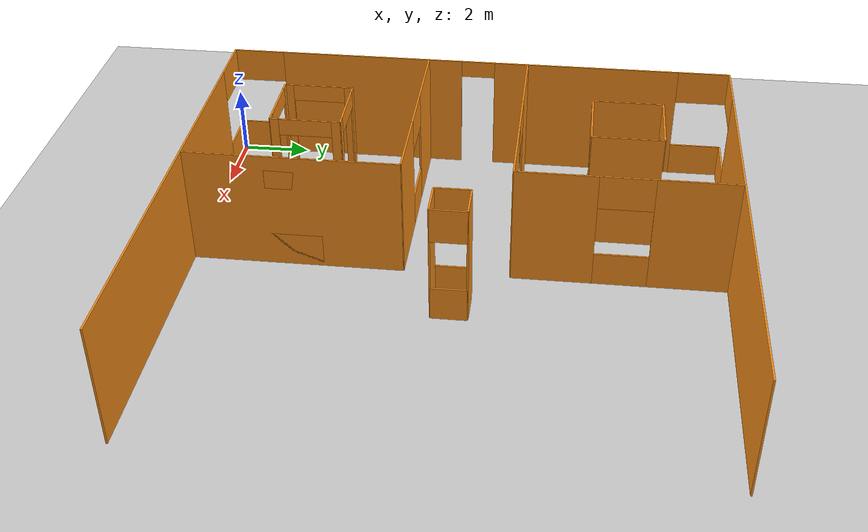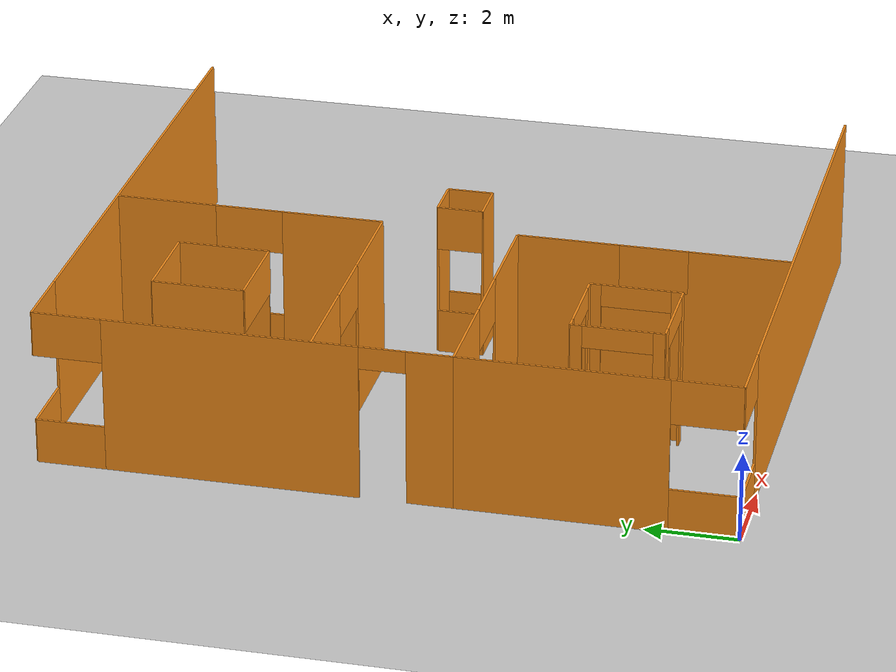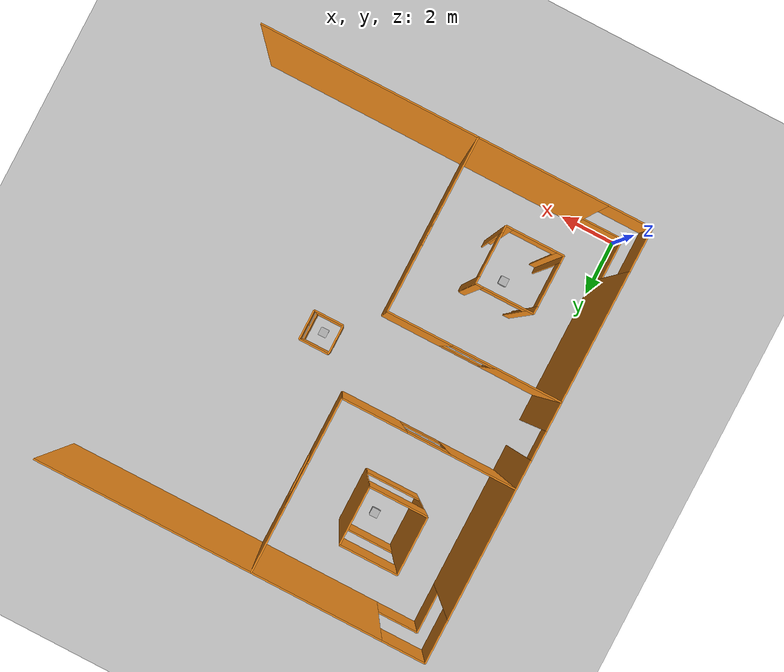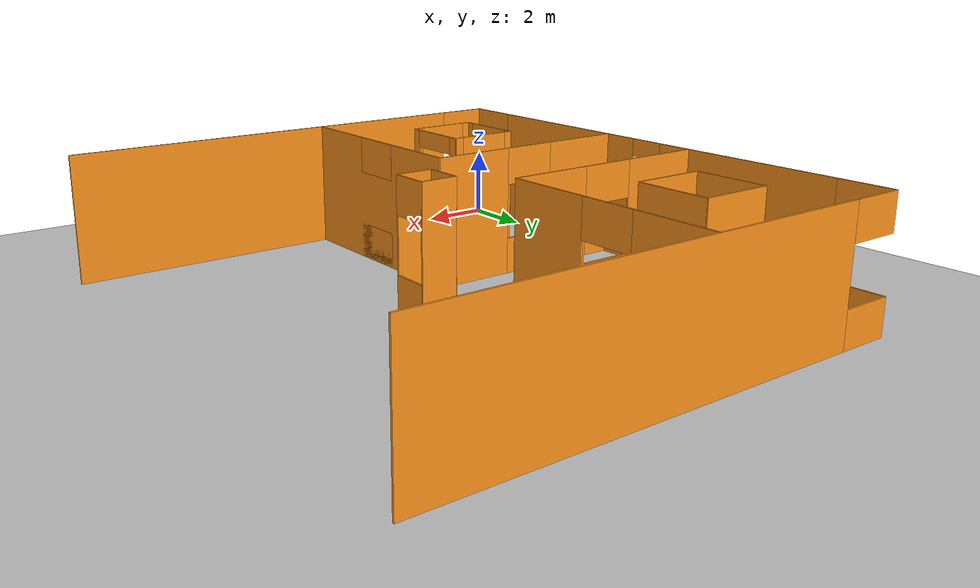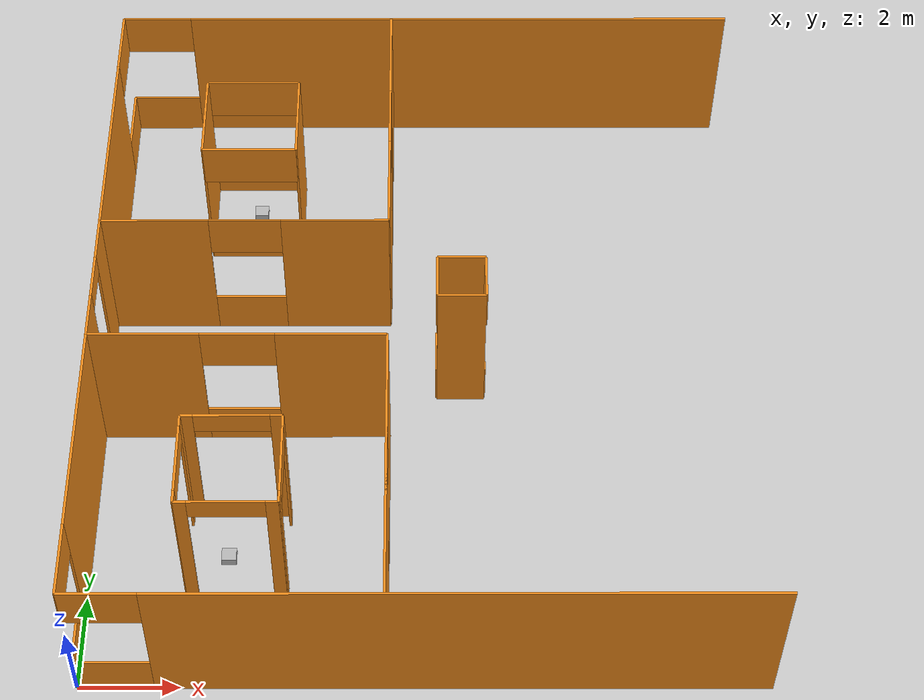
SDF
<sdf version="1.6">
 <world name="default">
  <include><uri>model://rirpc_box</uri><name>cube_3</name><pose>3.03125 12.21875 0 0 0 0</pose></include>
  <include><uri>model://rirpc_box</uri><name>cube_2</name><pose>2.78125 2.96875 0 0 0 0</pose></include>
  <include><uri>model://rirpc_box</uri><name>cube_0</name><pose>7.53125 7.46875 0 0 0 0</pose></include>
  <model name="window_20">
   <pose>3.0 13.0 1.75 0 0 -0.0</pose>
   <link name="top">
    <pose>0 0 1.25 0 0 0</pose>
    <inertial>
     <mass>1</mass>
     <inertia><ixx>0</ixx><ixy>0</ixy><ixz>0</ixz><iyy>0</iyy><iyz>0</iyz><izz>0</izz></inertia>
    </inertial>
    <collision name="collision"><geometry><box><size>2.0 0.05 1.0</size></box></geometry></collision>
    <visual name="visual">
     <geometry><box><size>2.0 0.05 1.0</size></box></geometry>
     <material>
      <script><name>Gazebo/Orange</name><uri>file://media/materials/scripts/gazebo.material</uri></script>
     </material>
    </visual>
   </link>
   <link name="bot">
    <pose>0 0 -1.25 0 0 0</pose>
    <inertial>
     <mass>1</mass>
     <inertia><ixx>0</ixx><ixy>0</ixy><ixz>0</ixz><iyy>0</iyy><iyz>0</iyz><izz>0</izz></inertia>
    </inertial>
    <collision name="collision"><geometry><box><size>2.0 0.05 1.0</size></box></geometry></collision>
    <visual name="visual">
     <geometry><box><size>2.0 0.05 1.0</size></box></geometry>
     <material>
      <script><name>Gazebo/Orange</name><uri>file://media/materials/scripts/gazebo.material</uri></script>
     </material>
    </visual>
   </link>
   <static>1</static>
  </model>
  <model name="window_19">
   <pose>3.0 11.0 1.75 0 0 -3.141592653589793</pose>
   <link name="top">
    <pose>0 0 1.25 0 0 0</pose>
    <inertial>
     <mass>1</mass>
     <inertia><ixx>0</ixx><ixy>0</ixy><ixz>0</ixz><iyy>0</iyy><iyz>0</iyz><izz>0</izz></inertia>
    </inertial>
    <collision name="collision"><geometry><box><size>2.0 0.05 1.0</size></box></geometry></collision>
    <visual name="visual">
     <geometry><box><size>2.0 0.05 1.0</size></box></geometry>
     <material>
      <script><name>Gazebo/Orange</name><uri>file://media/materials/scripts/gazebo.material</uri></script>
     </material>
    </visual>
   </link>
   <link name="bot">
    <pose>0 0 -1.25 0 0 0</pose>
    <inertial>
     <mass>1</mass>
     <inertia><ixx>0</ixx><ixy>0</ixy><ixz>0</ixz><iyy>0</iyy><iyz>0</iyz><izz>0</izz></inertia>
    </inertial>
    <collision name="collision"><geometry><box><size>2.0 0.05 1.0</size></box></geometry></collision>
    <visual name="visual">
     <geometry><box><size>2.0 0.05 1.0</size></box></geometry>
     <material>
      <script><name>Gazebo/Orange</name><uri>file://media/materials/scripts/gazebo.material</uri></script>
     </material>
    </visual>
   </link>
   <static>1</static>
  </model>
  <model name="window_15">
   <pose>6.0 3.0 1.75 0 0 -1.5707963267948966</pose>
   <link name="top">
    <pose>0 0 1.25 0 0 0</pose>
    <inertial>
     <mass>1</mass>
     <inertia><ixx>0</ixx><ixy>0</ixy><ixz>0</ixz><iyy>0</iyy><iyz>0</iyz><izz>0</izz></inertia>
    </inertial>
    <collision name="collision"><geometry><box><size>1.5 0.05 1.0</size></box></geometry></collision>
    <visual name="visual">
     <geometry><box><size>1.5 0.05 1.0</size></box></geometry>
     <material>
      <script><name>Gazebo/Orange</name><uri>file://media/materials/scripts/gazebo.material</uri></script>
     </material>
    </visual>
   </link>
   <link name="bot">
    <pose>0 0 -1.25 0 0 0</pose>
    <inertial>
     <mass>1</mass>
     <inertia><ixx>0</ixx><ixy>0</ixy><ixz>0</ixz><iyy>0</iyy><iyz>0</iyz><izz>0</izz></inertia>
    </inertial>
    <collision name="collision"><geometry><box><size>1.5 0.05 1.0</size></box></geometry></collision>
    <visual name="visual">
     <geometry><box><size>1.5 0.05 1.0</size></box></geometry>
     <material>
      <script><name>Gazebo/Orange</name><uri>file://media/materials/scripts/gazebo.material</uri></script>
     </material>
    </visual>
   </link>
   <static>1</static>
  </model>
  <model name="window_13">
   <pose>6.0 12.0 1.75 0 0 1.5707963267948966</pose>
   <link name="top">
    <pose>0 0 1.25 0 0 0</pose>
    <inertial>
     <mass>1</mass>
     <inertia><ixx>0</ixx><ixy>0</ixy><ixz>0</ixz><iyy>0</iyy><iyz>0</iyz><izz>0</izz></inertia>
    </inertial>
    <collision name="collision"><geometry><box><size>1.5 0.05 1.0</size></box></geometry></collision>
    <visual name="visual">
     <geometry><box><size>1.5 0.05 1.0</size></box></geometry>
     <material>
      <script><name>Gazebo/Orange</name><uri>file://media/materials/scripts/gazebo.material</uri></script>
     </material>
    </visual>
   </link>
   <link name="bot">
    <pose>0 0 -1.25 0 0 0</pose>
    <inertial>
     <mass>1</mass>
     <inertia><ixx>0</ixx><ixy>0</ixy><ixz>0</ixz><iyy>0</iyy><iyz>0</iyz><izz>0</izz></inertia>
    </inertial>
    <collision name="collision"><geometry><box><size>1.5 0.05 1.0</size></box></geometry></collision>
    <visual name="visual">
     <geometry><box><size>1.5 0.05 1.0</size></box></geometry>
     <material>
      <script><name>Gazebo/Orange</name><uri>file://media/materials/scripts/gazebo.material</uri></script>
     </material>
    </visual>
   </link>
   <static>1</static>
  </model>
  <model name="window_12">
   <pose>3.0 9.0 1.75 0 0 -0.0</pose>
   <link name="top">
    <pose>0 0 1.25 0 0 0</pose>
    <inertial>
     <mass>1</mass>
     <inertia><ixx>0</ixx><ixy>0</ixy><ixz>0</ixz><iyy>0</iyy><iyz>0</iyz><izz>0</izz></inertia>
    </inertial>
    <collision name="collision"><geometry><box><size>1.5 0.05 1.0</size></box></geometry></collision>
    <visual name="visual">
     <geometry><box><size>1.5 0.05 1.0</size></box></geometry>
     <material>
      <script><name>Gazebo/Orange</name><uri>file://media/materials/scripts/gazebo.material</uri></script>
     </material>
    </visual>
   </link>
   <link name="bot">
    <pose>0 0 -1.25 0 0 0</pose>
    <inertial>
     <mass>1</mass>
     <inertia><ixx>0</ixx><ixy>0</ixy><ixz>0</ixz><iyy>0</iyy><iyz>0</iyz><izz>0</izz></inertia>
    </inertial>
    <collision name="collision"><geometry><box><size>1.5 0.05 1.0</size></box></geometry></collision>
    <visual name="visual">
     <geometry><box><size>1.5 0.05 1.0</size></box></geometry>
     <material>
      <script><name>Gazebo/Orange</name><uri>file://media/materials/scripts/gazebo.material</uri></script>
     </material>
    </visual>
   </link>
   <static>1</static>
  </model>
  <model name="window_11">
   <pose>3.0 6.0 1.75 0 0 -3.141592653589793</pose>
   <link name="top">
    <pose>0 0 1.25 0 0 0</pose>
    <inertial>
     <mass>1</mass>
     <inertia><ixx>0</ixx><ixy>0</ixy><ixz>0</ixz><iyy>0</iyy><iyz>0</iyz><izz>0</izz></inertia>
    </inertial>
    <collision name="collision"><geometry><box><size>1.5 0.05 1.0</size></box></geometry></collision>
    <visual name="visual">
     <geometry><box><size>1.5 0.05 1.0</size></box></geometry>
     <material>
      <script><name>Gazebo/Orange</name><uri>file://media/materials/scripts/gazebo.material</uri></script>
     </material>
    </visual>
   </link>
   <link name="bot">
    <pose>0 0 -1.25 0 0 0</pose>
    <inertial>
     <mass>1</mass>
     <inertia><ixx>0</ixx><ixy>0</ixy><ixz>0</ixz><iyy>0</iyy><iyz>0</iyz><izz>0</izz></inertia>
    </inertial>
    <collision name="collision"><geometry><box><size>1.5 0.05 1.0</size></box></geometry></collision>
    <visual name="visual">
     <geometry><box><size>1.5 0.05 1.0</size></box></geometry>
     <material>
      <script><name>Gazebo/Orange</name><uri>file://media/materials/scripts/gazebo.material</uri></script>
     </material>
    </visual>
   </link>
   <static>1</static>
  </model>
  <model name="window_10">
   <pose>8.0 7.5 1.75 0 0 1.5707963267948966</pose>
   <link name="top">
    <pose>0 0 1.25 0 0 0</pose>
    <inertial>
     <mass>1</mass>
     <inertia><ixx>0</ixx><ixy>0</ixy><ixz>0</ixz><iyy>0</iyy><iyz>0</iyz><izz>0</izz></inertia>
    </inertial>
    <collision name="collision"><geometry><box><size>1.0 0.05 1.0</size></box></geometry></collision>
    <visual name="visual">
     <geometry><box><size>1.0 0.05 1.0</size></box></geometry>
     <material>
      <script><name>Gazebo/Orange</name><uri>file://media/materials/scripts/gazebo.material</uri></script>
     </material>
    </visual>
   </link>
   <link name="bot">
    <pose>0 0 -1.25 0 0 0</pose>
    <inertial>
     <mass>1</mass>
     <inertia><ixx>0</ixx><ixy>0</ixy><ixz>0</ixz><iyy>0</iyy><iyz>0</iyz><izz>0</izz></inertia>
    </inertial>
    <collision name="collision"><geometry><box><size>1.0 0.05 1.0</size></box></geometry></collision>
    <visual name="visual">
     <geometry><box><size>1.0 0.05 1.0</size></box></geometry>
     <material>
      <script><name>Gazebo/Orange</name><uri>file://media/materials/scripts/gazebo.material</uri></script>
     </material>
    </visual>
   </link>
   <static>1</static>
  </model>
  <model name="window_9">
   <pose>7.0 7.5 1.75 0 0 1.5707963267948966</pose>
   <link name="top">
    <pose>0 0 1.25 0 0 0</pose>
    <inertial>
     <mass>1</mass>
     <inertia><ixx>0</ixx><ixy>0</ixy><ixz>0</ixz><iyy>0</iyy><iyz>0</iyz><izz>0</izz></inertia>
    </inertial>
    <collision name="collision"><geometry><box><size>1.0 0.05 1.0</size></box></geometry></collision>
    <visual name="visual">
     <geometry><box><size>1.0 0.05 1.0</size></box></geometry>
     <material>
      <script><name>Gazebo/Orange</name><uri>file://media/materials/scripts/gazebo.material</uri></script>
     </material>
    </visual>
   </link>
   <link name="bot">
    <pose>0 0 -1.25 0 0 0</pose>
    <inertial>
     <mass>1</mass>
     <inertia><ixx>0</ixx><ixy>0</ixy><ixz>0</ixz><iyy>0</iyy><iyz>0</iyz><izz>0</izz></inertia>
    </inertial>
    <collision name="collision"><geometry><box><size>1.0 0.05 1.0</size></box></geometry></collision>
    <visual name="visual">
     <geometry><box><size>1.0 0.05 1.0</size></box></geometry>
     <material>
      <script><name>Gazebo/Orange</name><uri>file://media/materials/scripts/gazebo.material</uri></script>
     </material>
    </visual>
   </link>
   <static>1</static>
  </model>
  <model name="window_8">
   <pose>0.0 14.25 1.75 0 0 1.5707963267948966</pose>
   <link name="top">
    <pose>0 0 1.25 0 0 0</pose>
    <inertial>
     <mass>1</mass>
     <inertia><ixx>0</ixx><ixy>0</ixy><ixz>0</ixz><iyy>0</iyy><iyz>0</iyz><izz>0</izz></inertia>
    </inertial>
    <collision name="collision"><geometry><box><size>1.5 0.05 1.0</size></box></geometry></collision>
    <visual name="visual">
     <geometry><box><size>1.5 0.05 1.0</size></box></geometry>
     <material>
      <script><name>Gazebo/Orange</name><uri>file://media/materials/scripts/gazebo.material</uri></script>
     </material>
    </visual>
   </link>
   <link name="bot">
    <pose>0 0 -1.25 0 0 0</pose>
    <inertial>
     <mass>1</mass>
     <inertia><ixx>0</ixx><ixy>0</ixy><ixz>0</ixz><iyy>0</iyy><iyz>0</iyz><izz>0</izz></inertia>
    </inertial>
    <collision name="collision"><geometry><box><size>1.5 0.05 1.0</size></box></geometry></collision>
    <visual name="visual">
     <geometry><box><size>1.5 0.05 1.0</size></box></geometry>
     <material>
      <script><name>Gazebo/Orange</name><uri>file://media/materials/scripts/gazebo.material</uri></script>
     </material>
    </visual>
   </link>
   <static>1</static>
  </model>
  <model name="window_7">
   <pose>0.75 15.0 1.75 0 0 -0.0</pose>
   <link name="top">
    <pose>0 0 1.25 0 0 0</pose>
    <inertial>
     <mass>1</mass>
     <inertia><ixx>0</ixx><ixy>0</ixy><ixz>0</ixz><iyy>0</iyy><iyz>0</iyz><izz>0</izz></inertia>
    </inertial>
    <collision name="collision"><geometry><box><size>1.5 0.05 1.0</size></box></geometry></collision>
    <visual name="visual">
     <geometry><box><size>1.5 0.05 1.0</size></box></geometry>
     <material>
      <script><name>Gazebo/Orange</name><uri>file://media/materials/scripts/gazebo.material</uri></script>
     </material>
    </visual>
   </link>
   <link name="bot">
    <pose>0 0 -1.25 0 0 0</pose>
    <inertial>
     <mass>1</mass>
     <inertia><ixx>0</ixx><ixy>0</ixy><ixz>0</ixz><iyy>0</iyy><iyz>0</iyz><izz>0</izz></inertia>
    </inertial>
    <collision name="collision"><geometry><box><size>1.5 0.05 1.0</size></box></geometry></collision>
    <visual name="visual">
     <geometry><box><size>1.5 0.05 1.0</size></box></geometry>
     <material>
      <script><name>Gazebo/Orange</name><uri>file://media/materials/scripts/gazebo.material</uri></script>
     </material>
    </visual>
   </link>
   <static>1</static>
  </model>
  <model name="window_2">
   <pose>0.75 0.0 1.75 0 0 -3.141592653589793</pose>
   <link name="top">
    <pose>0 0 1.25 0 0 0</pose>
    <inertial>
     <mass>1</mass>
     <inertia><ixx>0</ixx><ixy>0</ixy><ixz>0</ixz><iyy>0</iyy><iyz>0</iyz><izz>0</izz></inertia>
    </inertial>
    <collision name="collision"><geometry><box><size>1.5 0.05 1.0</size></box></geometry></collision>
    <visual name="visual">
     <geometry><box><size>1.5 0.05 1.0</size></box></geometry>
     <material>
      <script><name>Gazebo/Orange</name><uri>file://media/materials/scripts/gazebo.material</uri></script>
     </material>
    </visual>
   </link>
   <link name="bot">
    <pose>0 0 -1.25 0 0 0</pose>
    <inertial>
     <mass>1</mass>
     <inertia><ixx>0</ixx><ixy>0</ixy><ixz>0</ixz><iyy>0</iyy><iyz>0</iyz><izz>0</izz></inertia>
    </inertial>
    <collision name="collision"><geometry><box><size>1.5 0.05 1.0</size></box></geometry></collision>
    <visual name="visual">
     <geometry><box><size>1.5 0.05 1.0</size></box></geometry>
     <material>
      <script><name>Gazebo/Orange</name><uri>file://media/materials/scripts/gazebo.material</uri></script>
     </material>
    </visual>
   </link>
   <static>1</static>
  </model>
  <model name="window_1">
   <pose>0.0 0.75 1.75 0 0 1.5707963267948966</pose>
   <link name="top">
    <pose>0 0 1.25 0 0 0</pose>
    <inertial>
     <mass>1</mass>
     <inertia><ixx>0</ixx><ixy>0</ixy><ixz>0</ixz><iyy>0</iyy><iyz>0</iyz><izz>0</izz></inertia>
    </inertial>
    <collision name="collision"><geometry><box><size>1.5 0.05 1.0</size></box></geometry></collision>
    <visual name="visual">
     <geometry><box><size>1.5 0.05 1.0</size></box></geometry>
     <material>
      <script><name>Gazebo/Orange</name><uri>file://media/materials/scripts/gazebo.material</uri></script>
     </material>
    </visual>
   </link>
   <link name="bot">
    <pose>0 0 -1.25 0 0 0</pose>
    <inertial>
     <mass>1</mass>
     <inertia><ixx>0</ixx><ixy>0</ixy><ixz>0</ixz><iyy>0</iyy><iyz>0</iyz><izz>0</izz></inertia>
    </inertial>
    <collision name="collision"><geometry><box><size>1.5 0.05 1.0</size></box></geometry></collision>
    <visual name="visual">
     <geometry><box><size>1.5 0.05 1.0</size></box></geometry>
     <material>
      <script><name>Gazebo/Orange</name><uri>file://media/materials/scripts/gazebo.material</uri></script>
     </material>
    </visual>
   </link>
   <static>1</static>
  </model>
  <model name="box_54">
   <pose>3.0 2.0 3.25 0 0 -3.141592653589793</pose>
   <link name="link">
    <inertial>
     <mass>1</mass>
     <inertia><ixx>0</ixx><ixy>0</ixy><ixz>0</ixz><iyy>0</iyy><iyz>0</iyz><izz>0</izz></inertia>
    </inertial>
    <collision name="collision"><geometry><box><size>1.5 0.05 0.5</size></box></geometry></collision>
    <visual name="visual">
     <geometry><box><size>1.5 0.05 0.5</size></box></geometry>
     <material>
      <script><name>Gazebo/Orange</name><uri>file://media/materials/scripts/gazebo.material</uri></script>
     </material>
    </visual>
   </link>
   <static>1</static>
  </model>
  <model name="box_53">
   <pose>2.0 3.0 3.25 0 0 1.5707963267948966</pose>
   <link name="link">
    <inertial>
     <mass>1</mass>
     <inertia><ixx>0</ixx><ixy>0</ixy><ixz>0</ixz><iyy>0</iyy><iyz>0</iyz><izz>0</izz></inertia>
    </inertial>
    <collision name="collision"><geometry><box><size>1.5 0.05 0.5</size></box></geometry></collision>
    <visual name="visual">
     <geometry><box><size>1.5 0.05 0.5</size></box></geometry>
     <material>
      <script><name>Gazebo/Orange</name><uri>file://media/materials/scripts/gazebo.material</uri></script>
     </material>
    </visual>
   </link>
   <static>1</static>
  </model>
  <model name="box_52">
   <pose>3.0 4.0 3.25 0 0 -0.0</pose>
   <link name="link">
    <inertial>
     <mass>1</mass>
     <inertia><ixx>0</ixx><ixy>0</ixy><ixz>0</ixz><iyy>0</iyy><iyz>0</iyz><izz>0</izz></inertia>
    </inertial>
    <collision name="collision"><geometry><box><size>1.5 0.05 0.5</size></box></geometry></collision>
    <visual name="visual">
     <geometry><box><size>1.5 0.05 0.5</size></box></geometry>
     <material>
      <script><name>Gazebo/Orange</name><uri>file://media/materials/scripts/gazebo.material</uri></script>
     </material>
    </visual>
   </link>
   <static>1</static>
  </model>
  <model name="box_51">
   <pose>4.0 3.0 3.25 0 0 -1.5707963267948966</pose>
   <link name="link">
    <inertial>
     <mass>1</mass>
     <inertia><ixx>0</ixx><ixy>0</ixy><ixz>0</ixz><iyy>0</iyy><iyz>0</iyz><izz>0</izz></inertia>
    </inertial>
    <collision name="collision"><geometry><box><size>1.5 0.05 0.5</size></box></geometry></collision>
    <visual name="visual">
     <geometry><box><size>1.5 0.05 0.5</size></box></geometry>
     <material>
      <script><name>Gazebo/Orange</name><uri>file://media/materials/scripts/gazebo.material</uri></script>
     </material>
    </visual>
   </link>
   <static>1</static>
  </model>
  <model name="box_50">
   <pose>0.0 7.5 3.25 0 0 1.5707963267948966</pose>
   <link name="link">
    <inertial>
     <mass>1</mass>
     <inertia><ixx>0</ixx><ixy>0</ixy><ixz>0</ixz><iyy>0</iyy><iyz>0</iyz><izz>0</izz></inertia>
    </inertial>
    <collision name="collision"><geometry><box><size>1.0 0.05 0.5</size></box></geometry></collision>
    <visual name="visual">
     <geometry><box><size>1.0 0.05 0.5</size></box></geometry>
     <material>
      <script><name>Gazebo/Orange</name><uri>file://media/materials/scripts/gazebo.material</uri></script>
     </material>
    </visual>
   </link>
   <static>1</static>
  </model>
  <model name="box_41">
   <pose>0.0 10.75 1.75 0 0 -1.5707963267948966</pose>
   <link name="link">
    <inertial>
     <mass>1</mass>
     <inertia><ixx>0</ixx><ixy>0</ixy><ixz>0</ixz><iyy>0</iyy><iyz>0</iyz><izz>0</izz></inertia>
    </inertial>
    <collision name="collision"><geometry><box><size>5.5 0.05 3.5</size></box></geometry></collision>
    <visual name="visual">
     <geometry><box><size>5.5 0.05 3.5</size></box></geometry>
     <material>
      <script><name>Gazebo/Orange</name><uri>file://media/materials/scripts/gazebo.material</uri></script>
     </material>
    </visual>
   </link>
   <static>1</static>
  </model>
  <model name="box_32">
   <pose>2.125 2.0 1.75 0 0 -3.141592653589793</pose>
   <link name="link">
    <inertial>
     <mass>1</mass>
     <inertia><ixx>0</ixx><ixy>0</ixy><ixz>0</ixz><iyy>0</iyy><iyz>0</iyz><izz>0</izz></inertia>
    </inertial>
    <collision name="collision"><geometry><box><size>0.25 0.05 3.5</size></box></geometry></collision>
    <visual name="visual">
     <geometry><box><size>0.25 0.05 3.5</size></box></geometry>
     <material>
      <script><name>Gazebo/Orange</name><uri>file://media/materials/scripts/gazebo.material</uri></script>
     </material>
    </visual>
   </link>
   <static>1</static>
  </model>
  <model name="box_31">
   <pose>2.0 2.125 1.75 0 0 1.5707963267948966</pose>
   <link name="link">
    <inertial>
     <mass>1</mass>
     <inertia><ixx>0</ixx><ixy>0</ixy><ixz>0</ixz><iyy>0</iyy><iyz>0</iyz><izz>0</izz></inertia>
    </inertial>
    <collision name="collision"><geometry><box><size>0.25 0.05 3.5</size></box></geometry></collision>
    <visual name="visual">
     <geometry><box><size>0.25 0.05 3.5</size></box></geometry>
     <material>
      <script><name>Gazebo/Orange</name><uri>file://media/materials/scripts/gazebo.material</uri></script>
     </material>
    </visual>
   </link>
   <static>1</static>
  </model>
  <model name="box_30">
   <pose>2.0 3.875 1.75 0 0 1.5707963267948966</pose>
   <link name="link">
    <inertial>
     <mass>1</mass>
     <inertia><ixx>0</ixx><ixy>0</ixy><ixz>0</ixz><iyy>0</iyy><iyz>0</iyz><izz>0</izz></inertia>
    </inertial>
    <collision name="collision"><geometry><box><size>0.25 0.05 3.5</size></box></geometry></collision>
    <visual name="visual">
     <geometry><box><size>0.25 0.05 3.5</size></box></geometry>
     <material>
      <script><name>Gazebo/Orange</name><uri>file://media/materials/scripts/gazebo.material</uri></script>
     </material>
    </visual>
   </link>
   <static>1</static>
  </model>
  <model name="box_29">
   <pose>2.125 4.0 1.75 0 0 -0.0</pose>
   <link name="link">
    <inertial>
     <mass>1</mass>
     <inertia><ixx>0</ixx><ixy>0</ixy><ixz>0</ixz><iyy>0</iyy><iyz>0</iyz><izz>0</izz></inertia>
    </inertial>
    <collision name="collision"><geometry><box><size>0.25 0.05 3.5</size></box></geometry></collision>
    <visual name="visual">
     <geometry><box><size>0.25 0.05 3.5</size></box></geometry>
     <material>
      <script><name>Gazebo/Orange</name><uri>file://media/materials/scripts/gazebo.material</uri></script>
     </material>
    </visual>
   </link>
   <static>1</static>
  </model>
  <model name="box_28">
   <pose>3.875 4.0 1.75 0 0 -0.0</pose>
   <link name="link">
    <inertial>
     <mass>1</mass>
     <inertia><ixx>0</ixx><ixy>0</ixy><ixz>0</ixz><iyy>0</iyy><iyz>0</iyz><izz>0</izz></inertia>
    </inertial>
    <collision name="collision"><geometry><box><size>0.25 0.05 3.5</size></box></geometry></collision>
    <visual name="visual">
     <geometry><box><size>0.25 0.05 3.5</size></box></geometry>
     <material>
      <script><name>Gazebo/Orange</name><uri>file://media/materials/scripts/gazebo.material</uri></script>
     </material>
    </visual>
   </link>
   <static>1</static>
  </model>
  <model name="box_27">
   <pose>4.0 3.875 1.75 0 0 -1.5707963267948966</pose>
   <link name="link">
    <inertial>
     <mass>1</mass>
     <inertia><ixx>0</ixx><ixy>0</ixy><ixz>0</ixz><iyy>0</iyy><iyz>0</iyz><izz>0</izz></inertia>
    </inertial>
    <collision name="collision"><geometry><box><size>0.25 0.05 3.5</size></box></geometry></collision>
    <visual name="visual">
     <geometry><box><size>0.25 0.05 3.5</size></box></geometry>
     <material>
      <script><name>Gazebo/Orange</name><uri>file://media/materials/scripts/gazebo.material</uri></script>
     </material>
    </visual>
   </link>
   <static>1</static>
  </model>
  <model name="box_26">
   <pose>4.0 2.125 1.75 0 0 -1.5707963267948966</pose>
   <link name="link">
    <inertial>
     <mass>1</mass>
     <inertia><ixx>0</ixx><ixy>0</ixy><ixz>0</ixz><iyy>0</iyy><iyz>0</iyz><izz>0</izz></inertia>
    </inertial>
    <collision name="collision"><geometry><box><size>0.25 0.05 3.5</size></box></geometry></collision>
    <visual name="visual">
     <geometry><box><size>0.25 0.05 3.5</size></box></geometry>
     <material>
      <script><name>Gazebo/Orange</name><uri>file://media/materials/scripts/gazebo.material</uri></script>
     </material>
    </visual>
   </link>
   <static>1</static>
  </model>
  <model name="box_25">
   <pose>3.875 2.0 1.75 0 0 -3.141592653589793</pose>
   <link name="link">
    <inertial>
     <mass>1</mass>
     <inertia><ixx>0</ixx><ixy>0</ixy><ixz>0</ixz><iyy>0</iyy><iyz>0</iyz><izz>0</izz></inertia>
    </inertial>
    <collision name="collision"><geometry><box><size>0.25 0.05 3.5</size></box></geometry></collision>
    <visual name="visual">
     <geometry><box><size>0.25 0.05 3.5</size></box></geometry>
     <material>
      <script><name>Gazebo/Orange</name><uri>file://media/materials/scripts/gazebo.material</uri></script>
     </material>
    </visual>
   </link>
   <static>1</static>
  </model>
  <model name="box_24">
   <pose>4.0 12.0 1.75 0 0 -1.5707963267948966</pose>
   <link name="link">
    <inertial>
     <mass>1</mass>
     <inertia><ixx>0</ixx><ixy>0</ixy><ixz>0</ixz><iyy>0</iyy><iyz>0</iyz><izz>0</izz></inertia>
    </inertial>
    <collision name="collision"><geometry><box><size>2.0 0.05 3.5</size></box></geometry></collision>
    <visual name="visual">
     <geometry><box><size>2.0 0.05 3.5</size></box></geometry>
     <material>
      <script><name>Gazebo/Orange</name><uri>file://media/materials/scripts/gazebo.material</uri></script>
     </material>
    </visual>
   </link>
   <static>1</static>
  </model>
  <model name="box_23">
   <pose>2.0 12.0 1.75 0 0 1.5707963267948966</pose>
   <link name="link">
    <inertial>
     <mass>1</mass>
     <inertia><ixx>0</ixx><ixy>0</ixy><ixz>0</ixz><iyy>0</iyy><iyz>0</iyz><izz>0</izz></inertia>
    </inertial>
    <collision name="collision"><geometry><box><size>2.0 0.05 3.5</size></box></geometry></collision>
    <visual name="visual">
     <geometry><box><size>2.0 0.05 3.5</size></box></geometry>
     <material>
      <script><name>Gazebo/Orange</name><uri>file://media/materials/scripts/gazebo.material</uri></script>
     </material>
    </visual>
   </link>
   <static>1</static>
  </model>
  <model name="box_14">
   <pose>6.0 13.875 1.75 0 0 -1.5707963267948966</pose>
   <link name="link">
    <inertial>
     <mass>1</mass>
     <inertia><ixx>0</ixx><ixy>0</ixy><ixz>0</ixz><iyy>0</iyy><iyz>0</iyz><izz>0</izz></inertia>
    </inertial>
    <collision name="collision"><geometry><box><size>2.25 0.05 3.5</size></box></geometry></collision>
    <visual name="visual">
     <geometry><box><size>2.25 0.05 3.5</size></box></geometry>
     <material>
      <script><name>Gazebo/Orange</name><uri>file://media/materials/scripts/gazebo.material</uri></script>
     </material>
    </visual>
   </link>
   <static>1</static>
  </model>
  <model name="box_13">
   <pose>6.0 10.125 1.75 0 0 -1.5707963267948966</pose>
   <link name="link">
    <inertial>
     <mass>1</mass>
     <inertia><ixx>0</ixx><ixy>0</ixy><ixz>0</ixz><iyy>0</iyy><iyz>0</iyz><izz>0</izz></inertia>
    </inertial>
    <collision name="collision"><geometry><box><size>2.25 0.05 3.5</size></box></geometry></collision>
    <visual name="visual">
     <geometry><box><size>2.25 0.05 3.5</size></box></geometry>
     <material>
      <script><name>Gazebo/Orange</name><uri>file://media/materials/scripts/gazebo.material</uri></script>
     </material>
    </visual>
   </link>
   <static>1</static>
  </model>
  <model name="box_12">
   <pose>4.875 9.0 1.75 0 0 -3.141592653589793</pose>
   <link name="link">
    <inertial>
     <mass>1</mass>
     <inertia><ixx>0</ixx><ixy>0</ixy><ixz>0</ixz><iyy>0</iyy><iyz>0</iyz><izz>0</izz></inertia>
    </inertial>
    <collision name="collision"><geometry><box><size>2.25 0.05 3.5</size></box></geometry></collision>
    <visual name="visual">
     <geometry><box><size>2.25 0.05 3.5</size></box></geometry>
     <material>
      <script><name>Gazebo/Orange</name><uri>file://media/materials/scripts/gazebo.material</uri></script>
     </material>
    </visual>
   </link>
   <static>1</static>
  </model>
  <model name="box_11">
   <pose>1.125 9.0 1.75 0 0 -3.141592653589793</pose>
   <link name="link">
    <inertial>
     <mass>1</mass>
     <inertia><ixx>0</ixx><ixy>0</ixy><ixz>0</ixz><iyy>0</iyy><iyz>0</iyz><izz>0</izz></inertia>
    </inertial>
    <collision name="collision"><geometry><box><size>2.25 0.05 3.5</size></box></geometry></collision>
    <visual name="visual">
     <geometry><box><size>2.25 0.05 3.5</size></box></geometry>
     <material>
      <script><name>Gazebo/Orange</name><uri>file://media/materials/scripts/gazebo.material</uri></script>
     </material>
    </visual>
   </link>
   <static>1</static>
  </model>
  <model name="box_10">
   <pose>1.125 6.0 1.75 0 0 -0.0</pose>
   <link name="link">
    <inertial>
     <mass>1</mass>
     <inertia><ixx>0</ixx><ixy>0</ixy><ixz>0</ixz><iyy>0</iyy><iyz>0</iyz><izz>0</izz></inertia>
    </inertial>
    <collision name="collision"><geometry><box><size>2.25 0.05 3.5</size></box></geometry></collision>
    <visual name="visual">
     <geometry><box><size>2.25 0.05 3.5</size></box></geometry>
     <material>
      <script><name>Gazebo/Orange</name><uri>file://media/materials/scripts/gazebo.material</uri></script>
     </material>
    </visual>
   </link>
   <static>1</static>
  </model>
  <model name="box_9">
   <pose>4.875 6.0 1.75 0 0 -0.0</pose>
   <link name="link">
    <inertial>
     <mass>1</mass>
     <inertia><ixx>0</ixx><ixy>0</ixy><ixz>0</ixz><iyy>0</iyy><iyz>0</iyz><izz>0</izz></inertia>
    </inertial>
    <collision name="collision"><geometry><box><size>2.25 0.05 3.5</size></box></geometry></collision>
    <visual name="visual">
     <geometry><box><size>2.25 0.05 3.5</size></box></geometry>
     <material>
      <script><name>Gazebo/Orange</name><uri>file://media/materials/scripts/gazebo.material</uri></script>
     </material>
    </visual>
   </link>
   <static>1</static>
  </model>
  <model name="box_8">
   <pose>7.5 7.0 1.75 0 0 -3.141592653589793</pose>
   <link name="link">
    <inertial>
     <mass>1</mass>
     <inertia><ixx>0</ixx><ixy>0</ixy><ixz>0</ixz><iyy>0</iyy><iyz>0</iyz><izz>0</izz></inertia>
    </inertial>
    <collision name="collision"><geometry><box><size>1.0 0.05 3.5</size></box></geometry></collision>
    <visual name="visual">
     <geometry><box><size>1.0 0.05 3.5</size></box></geometry>
     <material>
      <script><name>Gazebo/Orange</name><uri>file://media/materials/scripts/gazebo.material</uri></script>
     </material>
    </visual>
   </link>
   <static>1</static>
  </model>
  <model name="box_7">
   <pose>7.5 8.0 1.75 0 0 -3.141592653589793</pose>
   <link name="link">
    <inertial>
     <mass>1</mass>
     <inertia><ixx>0</ixx><ixy>0</ixy><ixz>0</ixz><iyy>0</iyy><iyz>0</iyz><izz>0</izz></inertia>
    </inertial>
    <collision name="collision"><geometry><box><size>1.0 0.05 3.5</size></box></geometry></collision>
    <visual name="visual">
     <geometry><box><size>1.0 0.05 3.5</size></box></geometry>
     <material>
      <script><name>Gazebo/Orange</name><uri>file://media/materials/scripts/gazebo.material</uri></script>
     </material>
    </visual>
   </link>
   <static>1</static>
  </model>
  <model name="box_6">
   <pose>6.0 3.0 1.75 0 0 1.5707963267948966</pose>
   <link name="link">
    <inertial>
     <mass>1</mass>
     <inertia><ixx>0</ixx><ixy>0</ixy><ixz>0</ixz><iyy>0</iyy><iyz>0</iyz><izz>0</izz></inertia>
    </inertial>
    <collision name="collision"><geometry><box><size>6.0 0.05 3.5</size></box></geometry></collision>
    <visual name="visual">
     <geometry><box><size>6.0 0.05 3.5</size></box></geometry>
     <material>
      <script><name>Gazebo/Orange</name><uri>file://media/materials/scripts/gazebo.material</uri></script>
     </material>
    </visual>
   </link>
   <static>1</static>
  </model>
  <model name="box_5">
   <pose>7.5 0.0 1.75 0 0 -0.0</pose>
   <link name="link">
    <inertial>
     <mass>1</mass>
     <inertia><ixx>0</ixx><ixy>0</ixy><ixz>0</ixz><iyy>0</iyy><iyz>0</iyz><izz>0</izz></inertia>
    </inertial>
    <collision name="collision"><geometry><box><size>12.0 0.05 3.5</size></box></geometry></collision>
    <visual name="visual">
     <geometry><box><size>12.0 0.05 3.5</size></box></geometry>
     <material>
      <script><name>Gazebo/Orange</name><uri>file://media/materials/scripts/gazebo.material</uri></script>
     </material>
    </visual>
   </link>
   <static>1</static>
  </model>
  <model name="box_3">
   <pose>7.5 15.0 1.75 0 0 -3.141592653589793</pose>
   <link name="link">
    <inertial>
     <mass>1</mass>
     <inertia><ixx>0</ixx><ixy>0</ixy><ixz>0</ixz><iyy>0</iyy><iyz>0</iyz><izz>0</izz></inertia>
    </inertial>
    <collision name="collision"><geometry><box><size>12.0 0.05 3.5</size></box></geometry></collision>
    <visual name="visual">
     <geometry><box><size>12.0 0.05 3.5</size></box></geometry>
     <material>
      <script><name>Gazebo/Orange</name><uri>file://media/materials/scripts/gazebo.material</uri></script>
     </material>
    </visual>
   </link>
   <static>1</static>
  </model>
  <model name="box_2">
   <pose>0.0 6.5 1.75 0 0 -1.5707963267948966</pose>
   <link name="link">
    <inertial>
     <mass>1</mass>
     <inertia><ixx>0</ixx><ixy>0</ixy><ixz>0</ixz><iyy>0</iyy><iyz>0</iyz><izz>0</izz></inertia>
    </inertial>
    <collision name="collision"><geometry><box><size>1.0 0.05 3.5</size></box></geometry></collision>
    <visual name="visual">
     <geometry><box><size>1.0 0.05 3.5</size></box></geometry>
     <material>
      <script><name>Gazebo/Orange</name><uri>file://media/materials/scripts/gazebo.material</uri></script>
     </material>
    </visual>
   </link>
   <static>1</static>
  </model>
  <model name="box_1">
   <pose>0.0 3.75 1.75 0 0 -1.5707963267948966</pose>
   <link name="link">
    <inertial>
     <mass>1</mass>
     <inertia><ixx>0</ixx><ixy>0</ixy><ixz>0</ixz><iyy>0</iyy><iyz>0</iyz><izz>0</izz></inertia>
    </inertial>
    <collision name="collision"><geometry><box><size>4.5 0.05 3.5</size></box></geometry></collision>
    <visual name="visual">
     <geometry><box><size>4.5 0.05 3.5</size></box></geometry>
     <material>
      <script><name>Gazebo/Orange</name><uri>file://media/materials/scripts/gazebo.material</uri></script>
     </material>
    </visual>
   </link>
   <static>1</static>
  </model>
  <model name="ground_plane">
   <static>1</static>
   <link name="link">
    <collision name="collision">
     <geometry><plane><normal>0 0 1</normal><size>100 100</size></plane></geometry>
     <surface>
      <contact><collide_bitmask>65535</collide_bitmask></contact>
      <friction><ode><mu>100</mu><mu2>50</mu2></ode></friction>
     </surface>
    </collision>
    <visual name="visual">
     <cast_shadows>0</cast_shadows>
     <geometry><plane><normal>0 0 1</normal><size>100 100</size></plane></geometry>
     <material>
      <script><uri>file://media/materials/scripts/gazebo.material</uri><name>Gazebo/Grey</name></script>
     </material>
    </visual>
   </link>
  </model>
 </world>
</sdf>
